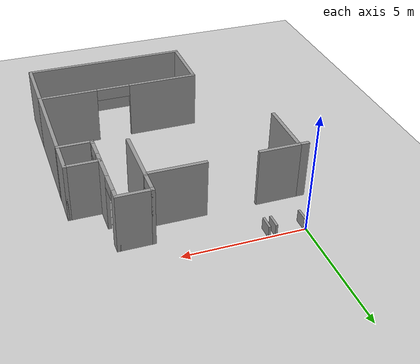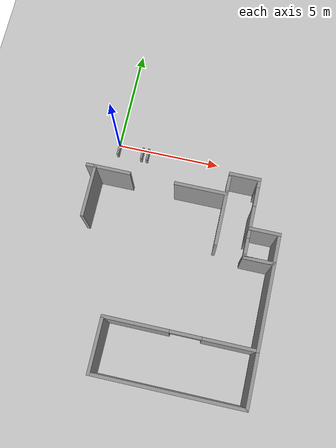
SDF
<sdf version="1.6">
 <world name="default">
  <model name="ground_plane">
   <static>1</static>
   <link name="link">
    <collision name="collision">
     <geometry><plane><normal>0 0 1</normal><size>100 100</size></plane></geometry>
     <surface><friction><ode><mu>100</mu><mu2>50</mu2></ode></friction></surface>
    </collision>
    <visual name="visual">
     <cast_shadows>0</cast_shadows>
     <geometry><plane><normal>0 0 1</normal><size>100 100</size></plane></geometry>
     <material>
      <script><uri>file://media/materials/scripts/gazebo.material</uri><name>Gazebo/Grey</name></script>
     </material>
    </visual>
   </link>
  </model>
  <model name="cma_parede_t">
   <pose>0.159955 -3.24016 0 0 -0 0</pose>
   <link name="Wall_15">
    <collision name="Wall_15_Collision">
     <geometry><box><size>2.5 0.15 2.5</size></box></geometry>
     <pose>0 0 1.25 0 -0 0</pose>
    </collision>
    <visual name="Wall_15_Visual">
     <pose>0 0 1.25 0 -0 0</pose>
     <geometry><box><size>2.5 0.15 2.5</size></box></geometry>
     <material>
      <script><uri>file://media/materials/scripts/gazebo.material</uri><name>Gazebo/Grey</name></script>
      <ambient>1 1 1 1</ambient>
     </material>
    </visual>
    <pose>-0.625 0 0 0 -0 1.5708</pose>
   </link>
   <link name="Wall_16">
    <collision name="Wall_16_Collision">
     <geometry><box><size>0.5 0.15 2.5</size></box></geometry>
     <pose>0 0 1.25 0 -0 0</pose>
    </collision>
    <visual name="Wall_16_Visual">
     <pose>0 0 1.25 0 -0 0</pose>
     <geometry><box><size>0.5 0.15 2.5</size></box></geometry>
     <material>
      <script><uri>file://media/materials/scripts/gazebo.material</uri><name>Gazebo/Grey</name></script>
      <ambient>1 1 1 1</ambient>
     </material>
    </visual>
    <pose>-0.8 1.175 0 0 -0 3.14159</pose>
   </link>
   <link name="Wall_18">
    <collision name="Wall_18_Collision">
     <geometry><box><size>1.75 0.15 2.5</size></box></geometry>
     <pose>0 0 1.25 0 -0 0</pose>
    </collision>
    <visual name="Wall_18_Visual">
     <pose>0 0 1.25 0 -0 0</pose>
     <geometry><box><size>1.75 0.15 2.5</size></box></geometry>
     <material>
      <script><uri>file://media/materials/scripts/gazebo.material</uri><name>Gazebo/Grey</name></script>
      <ambient>1 1 1 1</ambient>
     </material>
    </visual>
    <pose>0.175 1.175 0 0 -0 0</pose>
   </link>
   <static>1</static>
  </model>
  <model name="cma_parede_L">
   <pose>4.97628 -6.69992 0 0 -0 0</pose>
   <link name="Wall_0">
    <pose>0 -1.925 0 0 -0 0</pose>
    <visual name="Wall_0_Visual_0">
     <pose>-1.985 0 1.25 0 -0 0</pose>
     <geometry><box><size>3.03 0.15 2.5</size></box></geometry>
     <material>
      <script><uri>file://media/materials/scripts/gazebo.material</uri><name>Gazebo/Grey</name></script>
      <ambient>1 1 1 1</ambient>
     </material>
    </visual>
    <collision name="Wall_0_Collision_0">
     <geometry><box><size>3.03 0.15 2.5</size></box></geometry>
     <pose>-1.985 0 1.25 0 -0 0</pose>
    </collision>
    <visual name="Wall_0_Visual_1">
     <pose>2.24 0 1.25 0 -0 0</pose>
     <geometry><box><size>2.52 0.15 2.5</size></box></geometry>
     <material>
      <script><uri>file://media/materials/scripts/gazebo.material</uri><name>Gazebo/Grey</name></script>
      <ambient>1 1 1 1</ambient>
     </material>
    </visual>
    <collision name="Wall_0_Collision_1">
     <geometry><box><size>2.52 0.15 2.5</size></box></geometry>
     <pose>2.24 0 1.25 0 -0 0</pose>
    </collision>
    <visual name="Wall_0_Visual_2">
     <pose>0.255 0 2.25 0 -0 0</pose>
     <geometry><box><size>1.45 0.15 0.5</size></box></geometry>
     <material>
      <script><uri>file://media/materials/scripts/gazebo.material</uri><name>Gazebo/Grey</name></script>
      <ambient>1 1 1 1</ambient>
     </material>
    </visual>
    <collision name="Wall_0_Collision_2">
     <geometry><box><size>1.45 0.15 0.5</size></box></geometry>
     <pose>0.255 0 2.25 0 -0 0</pose>
    </collision>
   </link>
   <link name="Wall_1">
    <collision name="Wall_1_Collision">
     <geometry><box><size>4 0.15 2.5</size></box></geometry>
     <pose>0 0 1.25 0 -0 0</pose>
    </collision>
    <visual name="Wall_1_Visual">
     <pose>0 0 1.25 0 -0 0</pose>
     <geometry><box><size>4 0.15 2.5</size></box></geometry>
     <material>
      <script><uri>file://media/materials/scripts/gazebo.material</uri><name>Gazebo/Grey</name></script>
      <ambient>1 1 1 1</ambient>
     </material>
    </visual>
    <pose>3.425 0 0 0 -0 1.5708</pose>
   </link>
   <link name="Wall_2">
    <collision name="Wall_2_Collision">
     <geometry><box><size>1.5 0.15 2.5</size></box></geometry>
     <pose>0 0 1.25 0 -0 0</pose>
    </collision>
    <visual name="Wall_2_Visual">
     <pose>0 0 1.25 0 -0 0</pose>
     <geometry><box><size>1.5 0.15 2.5</size></box></geometry>
     <material>
      <script><uri>file://media/materials/scripts/gazebo.material</uri><name>Gazebo/Grey</name></script>
      <ambient>1 1 1 1</ambient>
     </material>
    </visual>
    <pose>2.75 1.925 0 0 -0 3.14159</pose>
   </link>
   <static>1</static>
  </model>
  <model name="cma_lavabo">
   <pose>7.72297 -4.09302 0 0 -0 0</pose>
   <link name="Wall_4">
    <pose>-0.675 0 0 0 -0 1.5708</pose>
    <visual name="Wall_4_Visual_0">
     <pose>-0.635 0 1.25 0 -0 0</pose>
     <geometry><box><size>0.23 0.15 2.5</size></box></geometry>
     <material>
      <script><uri>file://media/materials/scripts/gazebo.material</uri><name>Gazebo/Grey</name></script>
      <ambient>1 1 1 1</ambient>
     </material>
    </visual>
    <collision name="Wall_4_Collision_0">
     <geometry><box><size>0.23 0.15 2.5</size></box></geometry>
     <pose>-0.635 0 1.25 0 -0 0</pose>
    </collision>
    <visual name="Wall_4_Visual_1">
     <pose>0.48 0 1.25 0 -0 0</pose>
     <geometry><box><size>0.54 0.15 2.5</size></box></geometry>
     <material>
      <script><uri>file://media/materials/scripts/gazebo.material</uri><name>Gazebo/Grey</name></script>
      <ambient>1 1 1 1</ambient>
     </material>
    </visual>
    <collision name="Wall_4_Collision_1">
     <geometry><box><size>0.54 0.15 2.5</size></box></geometry>
     <pose>0.48 0 1.25 0 -0 0</pose>
    </collision>
    <visual name="Wall_4_Visual_2">
     <pose>-0.155 0 2.25 0 -0 0</pose>
     <geometry><box><size>0.73 0.15 0.5</size></box></geometry>
     <material>
      <script><uri>file://media/materials/scripts/gazebo.material</uri><name>Gazebo/Grey</name></script>
      <ambient>1 1 1 1</ambient>
     </material>
    </visual>
    <collision name="Wall_4_Collision_2">
     <geometry><box><size>0.73 0.15 0.5</size></box></geometry>
     <pose>-0.155 0 2.25 0 -0 0</pose>
    </collision>
   </link>
   <link name="Wall_5">
    <collision name="Wall_5_Collision">
     <geometry><box><size>1.5 0.15 2.5</size></box></geometry>
     <pose>0 0 1.25 0 -0 0</pose>
    </collision>
    <visual name="Wall_5_Visual">
     <pose>0 0 1.25 0 -0 0</pose>
     <geometry><box><size>1.5 0.15 2.5</size></box></geometry>
     <material>
      <script><uri>file://media/materials/scripts/gazebo.material</uri><name>Gazebo/Grey</name></script>
      <ambient>1 1 1 1</ambient>
     </material>
    </visual>
    <pose>0 0.675 0 0 -0 0</pose>
   </link>
   <link name="Wall_6">
    <collision name="Wall_6_Collision">
     <geometry><box><size>1.5 0.15 2.5</size></box></geometry>
     <pose>0 0 1.25 0 -0 0</pose>
    </collision>
    <visual name="Wall_6_Visual">
     <pose>0 0 1.25 0 -0 0</pose>
     <geometry><box><size>1.5 0.15 2.5</size></box></geometry>
     <material>
      <script><uri>file://media/materials/scripts/gazebo.material</uri><name>Gazebo/Grey</name></script>
      <ambient>1 1 1 1</ambient>
     </material>
    </visual>
    <pose>0.675 0 0 0 0 -1.5708</pose>
   </link>
   <link name="Wall_7">
    <collision name="Wall_7_Collision">
     <geometry><box><size>1.5 0.15 2.5</size></box></geometry>
     <pose>0 0 1.25 0 -0 0</pose>
    </collision>
    <visual name="Wall_7_Visual">
     <pose>0 0 1.25 0 -0 0</pose>
     <geometry><box><size>1.5 0.15 2.5</size></box></geometry>
     <material>
      <script><uri>file://media/materials/scripts/gazebo.material</uri><name>Gazebo/Grey</name></script>
      <ambient>1 1 1 1</ambient>
     </material>
    </visual>
    <pose>0 -0.675 0 0 -0 3.14159</pose>
   </link>
   <static>1</static>
  </model>
  <model name="cma_L2">
   <pose>4.51683 -3.24587 0 0 -0 0</pose>
   <link name="Wall_10">
    <collision name="Wall_10_Collision">
     <geometry><box><size>2.5 0.15 2.5</size></box></geometry>
     <pose>0 0 1.25 0 -0 0</pose>
    </collision>
    <visual name="Wall_10_Visual">
     <pose>0 0 1.25 0 -0 0</pose>
     <geometry><box><size>2.5 0.15 2.5</size></box></geometry>
     <material>
      <script><uri>file://media/materials/scripts/gazebo.material</uri><name>Gazebo/Grey</name></script>
      <ambient>1 1 1 1</ambient>
     </material>
    </visual>
    <pose>1.175 0 0 0 0 -1.5708</pose>
   </link>
   <link name="Wall_9">
    <collision name="Wall_9_Collision">
     <geometry><box><size>2.5 0.15 2.5</size></box></geometry>
     <pose>0 0 1.25 0 -0 0</pose>
    </collision>
    <visual name="Wall_9_Visual">
     <pose>0 0 1.25 0 -0 0</pose>
     <geometry><box><size>2.5 0.15 2.5</size></box></geometry>
     <material>
      <script><uri>file://media/materials/scripts/gazebo.material</uri><name>Gazebo/Grey</name></script>
      <ambient>1 1 1 1</ambient>
     </material>
    </visual>
    <pose>0 1.175 0 0 -0 0</pose>
   </link>
   <static>1</static>
  </model>
  <model name="cma_L3">
   <pose>6.37221 -2.26022 0 0 -0 0</pose>
   <link name="Wall_12">
    <pose>-0.675 0.75 0 0 -0 1.5708</pose>
    <visual name="Wall_12_Visual_0">
     <pose>-0.46 0 1.25 0 -0 0</pose>
     <geometry><box><size>0.08 0.15 2.5</size></box></geometry>
     <material>
      <script><uri>file://media/materials/scripts/gazebo.material</uri><name>Gazebo/Grey</name></script>
      <ambient>1 1 1 1</ambient>
     </material>
    </visual>
    <collision name="Wall_12_Collision_0">
     <geometry><box><size>0.08 0.15 2.5</size></box></geometry>
     <pose>-0.46 0 1.25 0 -0 0</pose>
    </collision>
    <visual name="Wall_12_Visual_1">
     <pose>0.405 0 1.25 0 -0 0</pose>
     <geometry><box><size>0.19 0.15 2.5</size></box></geometry>
     <material>
      <script><uri>file://media/materials/scripts/gazebo.material</uri><name>Gazebo/Grey</name></script>
      <ambient>1 1 1 1</ambient>
     </material>
    </visual>
    <collision name="Wall_12_Collision_1">
     <geometry><box><size>0.19 0.15 2.5</size></box></geometry>
     <pose>0.405 0 1.25 0 -0 0</pose>
    </collision>
    <visual name="Wall_12_Visual_2">
     <pose>-0.055 0 2.25 0 -0 0</pose>
     <geometry><box><size>0.73 0.15 0.5</size></box></geometry>
     <material>
      <script><uri>file://media/materials/scripts/gazebo.material</uri><name>Gazebo/Grey</name></script>
      <ambient>1 1 1 1</ambient>
     </material>
    </visual>
    <collision name="Wall_12_Collision_2">
     <geometry><box><size>0.73 0.15 0.5</size></box></geometry>
     <pose>-0.055 0 2.25 0 -0 0</pose>
    </collision>
   </link>
   <link name="Wall_13">
    <collision name="Wall_13_Collision">
     <geometry><box><size>1.5 0.15 2.5</size></box></geometry>
     <pose>0 0 1.25 0 -0 0</pose>
    </collision>
    <visual name="Wall_13_Visual">
     <pose>0 0 1.25 0 -0 0</pose>
     <geometry><box><size>1.5 0.15 2.5</size></box></geometry>
     <material>
      <script><uri>file://media/materials/scripts/gazebo.material</uri><name>Gazebo/Grey</name></script>
      <ambient>1 1 1 1</ambient>
     </material>
    </visual>
    <pose>0 1.175 0 0 -0 0</pose>
   </link>
   <link name="Wall_14">
    <pose>0.675 0 0 0 0 -1.5708</pose>
    <visual name="Wall_14_Visual_0">
     <pose>-1.0175 0 1.25 0 -0 0</pose>
     <geometry><box><size>0.465 0.15 2.5</size></box></geometry>
     <material>
      <script><uri>file://media/materials/scripts/gazebo.material</uri><name>Gazebo/Grey</name></script>
      <ambient>1 1 1 1</ambient>
     </material>
    </visual>
    <collision name="Wall_14_Collision_0">
     <geometry><box><size>0.465 0.15 2.5</size></box></geometry>
     <pose>-1.0175 0 1.25 0 -0 0</pose>
    </collision>
    <visual name="Wall_14_Visual_1">
     <pose>0.6825 0 1.25 0 -0 0</pose>
     <geometry><box><size>1.135 0.15 2.5</size></box></geometry>
     <material>
      <script><uri>file://media/materials/scripts/gazebo.material</uri><name>Gazebo/Grey</name></script>
      <ambient>1 1 1 1</ambient>
     </material>
    </visual>
    <collision name="Wall_14_Collision_1">
     <geometry><box><size>1.135 0.15 2.5</size></box></geometry>
     <pose>0.6825 0 1.25 0 -0 0</pose>
    </collision>
    <visual name="Wall_14_Visual_2">
     <pose>-0.335 0 2.25 0 -0 0</pose>
     <geometry><box><size>0.9 0.15 0.5</size></box></geometry>
     <material>
      <script><uri>file://media/materials/scripts/gazebo.material</uri><name>Gazebo/Grey</name></script>
      <ambient>1 1 1 1</ambient>
     </material>
    </visual>
    <collision name="Wall_14_Collision_2">
     <geometry><box><size>0.9 0.15 0.5</size></box></geometry>
     <pose>-0.335 0 2.25 0 -0 0</pose>
    </collision>
   </link>
   <static>1</static>
  </model>
  <model name="cma_U">
   <pose>4.97895 -9.92408 0 0 -0 0</pose>
   <link name="Wall_16">
    <collision name="Wall_16_Collision">
     <geometry><box><size>2.5 0.15 2.5</size></box></geometry>
     <pose>0 0 1.25 0 -0 0</pose>
    </collision>
    <visual name="Wall_16_Visual">
     <pose>0 0 1.25 0 -0 0</pose>
     <geometry><box><size>2.5 0.15 2.5</size></box></geometry>
     <material>
      <script><uri>file://media/materials/scripts/gazebo.material</uri><name>Gazebo/Grey</name></script>
      <ambient>1 1 1 1</ambient>
     </material>
    </visual>
    <pose>-3.425 0 0 0 0 -1.5708</pose>
   </link>
   <link name="Wall_17">
    <collision name="Wall_17_Collision">
     <geometry><box><size>7 0.15 2.5</size></box></geometry>
     <pose>0 0 1.25 0 -0 0</pose>
    </collision>
    <visual name="Wall_17_Visual">
     <pose>0 0 1.25 0 -0 0</pose>
     <geometry><box><size>7 0.15 2.5</size></box></geometry>
     <material>
      <script><uri>file://media/materials/scripts/gazebo.material</uri><name>Gazebo/Grey</name></script>
      <ambient>1 1 1 1</ambient>
     </material>
    </visual>
    <pose>0 -1.175 0 0 -0 0</pose>
   </link>
   <link name="Wall_18">
    <collision name="Wall_18_Collision">
     <geometry><box><size>2.5 0.15 2.5</size></box></geometry>
     <pose>0 0 1.25 0 -0 0</pose>
    </collision>
    <visual name="Wall_18_Visual">
     <pose>0 0 1.25 0 -0 0</pose>
     <geometry><box><size>2.5 0.15 2.5</size></box></geometry>
     <material>
      <script><uri>file://media/materials/scripts/gazebo.material</uri><name>Gazebo/Grey</name></script>
      <ambient>1 1 1 1</ambient>
     </material>
    </visual>
    <pose>3.425 0 0 0 -0 1.5708</pose>
   </link>
   <static>1</static>
  </model>
  <model name="cma_mesa_pc">
   <link name="link_0">
    <pose>-1.36533 -0.599866 0 0 -0 0</pose>
    <inertial>
     <mass>0.0551539</mass>
     <inertia>
      <ixx>0.00617776</ixx>
      <ixy>0</ixy>
      <ixz>0</ixz>
      <iyy>0.0046368</iyy>
      <iyz>0</iyz>
      <izz>0.00162222</izz>
     </inertia>
    </inertial>
    <visual name="visual">
     <geometry><box><size>0.094008 0.586626 1</size></box></geometry>
     <material>
      <lighting>1</lighting>
      <script><uri>file://media/materials/scripts/gazebo.material</uri><name>Gazebo/Grey</name></script>
      <ambient>0.3 0.3 0.3 1</ambient>
      <diffuse>0.7 0.7 0.7 1</diffuse>
      <specular>0.01 0.01 0.01 1</specular>
      <emissive>0 0 0 1</emissive>
     </material>
    </visual>
    <collision name="collision">
     <geometry><box><size>0.094008 0.586626 1</size></box></geometry>
     <surface>
      <friction>
       <ode><mu>1</mu><mu2>1</mu2><fdir1>0 0 0</fdir1><slip1>0</slip1><slip2>0</slip2></ode>
       <torsional>
        <coefficient>1</coefficient>
        <patch_radius>0</patch_radius>
        <surface_radius>0</surface_radius>
        <use_patch_radius>1</use_patch_radius>
        <ode><slip>0</slip></ode>
       </torsional>
      </friction>
      <bounce><restitution_coefficient>0</restitution_coefficient><threshold>1e+06</threshold></bounce>
      <contact>
       <collide_without_contact>0</collide_without_contact>
       <collide_without_contact_bitmask>1</collide_without_contact_bitmask>
       <collide_bitmask>1</collide_bitmask>
       <ode>
        <soft_cfm>0</soft_cfm>
        <soft_erp>0.2</soft_erp>
        <kp>1e+13</kp>
        <kd>1</kd>
        <max_vel>0.01</max_vel>
        <min_depth>0</min_depth>
       </ode>
       <bullet>
        <split_impulse>1</split_impulse>
        <split_impulse_penetration_threshold>-0.01</split_impulse_penetration_threshold>
        <soft_cfm>0</soft_cfm>
        <soft_erp>0.2</soft_erp>
        <kp>1e+13</kp>
        <kd>1</kd>
       </bullet>
      </contact>
     </surface>
    </collision>
   </link>
   <link name="link_0_clone">
    <pose>-0.180053 -0.603181 0 0 -0 0</pose>
    <inertial>
     <mass>0.0551539</mass>
     <inertia>
      <ixx>0.00617776</ixx>
      <ixy>0</ixy>
      <ixz>0</ixz>
      <iyy>0.0046368</iyy>
      <iyz>0</iyz>
      <izz>0.00162222</izz>
     </inertia>
    </inertial>
    <visual name="visual">
     <geometry><box><size>0.094008 0.586626 1</size></box></geometry>
     <material>
      <lighting>1</lighting>
      <script><uri>file://media/materials/scripts/gazebo.material</uri><name>Gazebo/Grey</name></script>
      <ambient>0.3 0.3 0.3 1</ambient>
      <diffuse>0.7 0.7 0.7 1</diffuse>
      <specular>0.01 0.01 0.01 1</specular>
      <emissive>0 0 0 1</emissive>
      <shader type="pixel"/>
     </material>
    </visual>
    <collision name="collision">
     <geometry><box><size>0.094008 0.586626 1</size></box></geometry>
     <surface>
      <friction>
       <ode><mu>1</mu><mu2>1</mu2><fdir1>0 0 0</fdir1><slip1>0</slip1><slip2>0</slip2></ode>
       <torsional>
        <coefficient>1</coefficient>
        <patch_radius>0</patch_radius>
        <surface_radius>0</surface_radius>
        <use_patch_radius>1</use_patch_radius>
        <ode><slip>0</slip></ode>
       </torsional>
      </friction>
      <bounce><restitution_coefficient>0</restitution_coefficient><threshold>1e+06</threshold></bounce>
      <contact>
       <collide_without_contact>0</collide_without_contact>
       <collide_without_contact_bitmask>1</collide_without_contact_bitmask>
       <collide_bitmask>1</collide_bitmask>
       <ode>
        <soft_cfm>0</soft_cfm>
        <soft_erp>0.2</soft_erp>
        <kp>1e+13</kp>
        <kd>1</kd>
        <max_vel>0.01</max_vel>
        <min_depth>0</min_depth>
       </ode>
       <bullet>
        <split_impulse>1</split_impulse>
        <split_impulse_penetration_threshold>-0.01</split_impulse_penetration_threshold>
        <soft_cfm>0</soft_cfm>
        <soft_erp>0.2</soft_erp>
        <kp>1e+13</kp>
        <kd>1</kd>
       </bullet>
      </contact>
     </surface>
    </collision>
   </link>
   <link name="link_0_clone_clone">
    <pose>0.101736 -0.601852 0 0 -0 0</pose>
    <inertial>
     <mass>0.0551539</mass>
     <inertia>
      <ixx>0.00617776</ixx>
      <ixy>0</ixy>
      <ixz>0</ixz>
      <iyy>0.0046368</iyy>
      <iyz>0</iyz>
      <izz>0.00162222</izz>
     </inertia>
    </inertial>
    <visual name="visual">
     <geometry><box><size>0.094008 0.586626 1</size></box></geometry>
     <material>
      <lighting>1</lighting>
      <script><uri>file://media/materials/scripts/gazebo.material</uri><name>Gazebo/Grey</name></script>
      <ambient>0.3 0.3 0.3 1</ambient>
      <diffuse>0.7 0.7 0.7 1</diffuse>
      <specular>0.01 0.01 0.01 1</specular>
      <emissive>0 0 0 1</emissive>
      <shader type="pixel"/>
     </material>
    </visual>
    <collision name="collision">
     <geometry><box><size>0.094008 0.586626 1</size></box></geometry>
     <surface>
      <friction>
       <ode><mu>1</mu><mu2>1</mu2><fdir1>0 0 0</fdir1><slip1>0</slip1><slip2>0</slip2></ode>
       <torsional>
        <coefficient>1</coefficient>
        <patch_radius>0</patch_radius>
        <surface_radius>0</surface_radius>
        <use_patch_radius>1</use_patch_radius>
        <ode><slip>0</slip></ode>
       </torsional>
      </friction>
      <bounce><restitution_coefficient>0</restitution_coefficient><threshold>1e+06</threshold></bounce>
      <contact>
       <collide_without_contact>0</collide_without_contact>
       <collide_without_contact_bitmask>1</collide_without_contact_bitmask>
       <collide_bitmask>1</collide_bitmask>
       <ode>
        <soft_cfm>0</soft_cfm>
        <soft_erp>0.2</soft_erp>
        <kp>1e+13</kp>
        <kd>1</kd>
        <max_vel>0.01</max_vel>
        <min_depth>0</min_depth>
       </ode>
       <bullet>
        <split_impulse>1</split_impulse>
        <split_impulse_penetration_threshold>-0.01</split_impulse_penetration_threshold>
        <soft_cfm>0</soft_cfm>
        <soft_erp>0.2</soft_erp>
        <kp>1e+13</kp>
        <kd>1</kd>
       </bullet>
      </contact>
     </surface>
    </collision>
   </link>
   <static>0</static>
   <pose>1.41004 0.284301 0 0 -0 0</pose>
  </model>
 </world>
</sdf>
